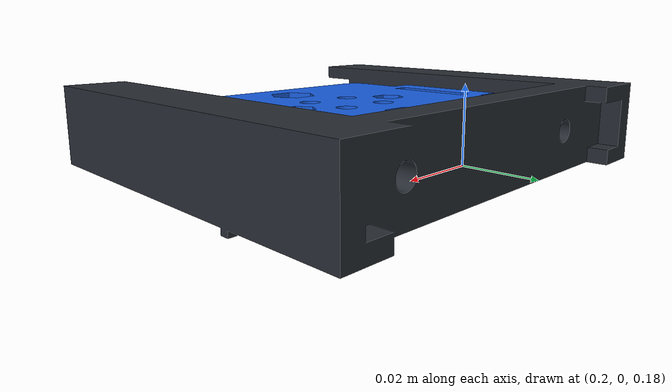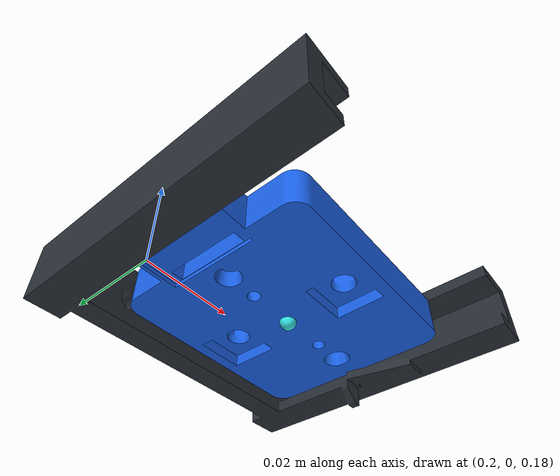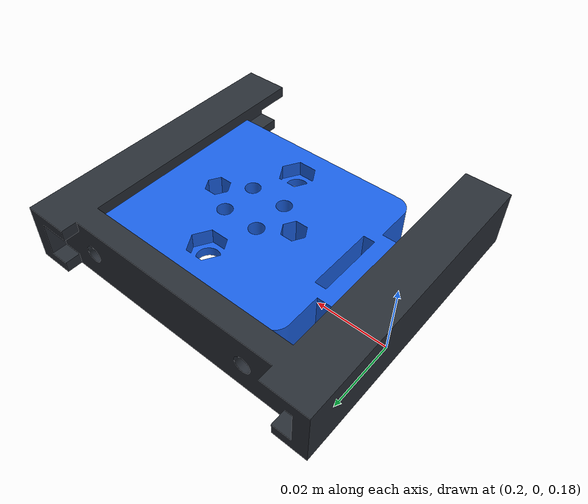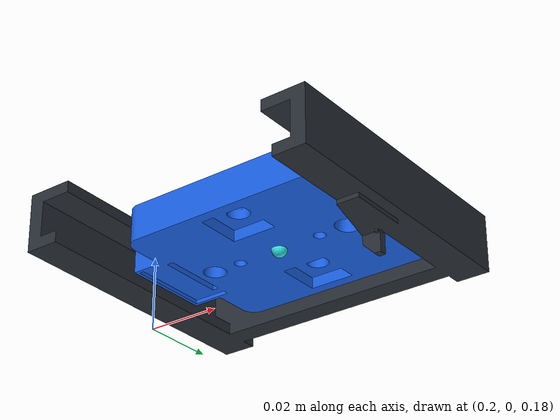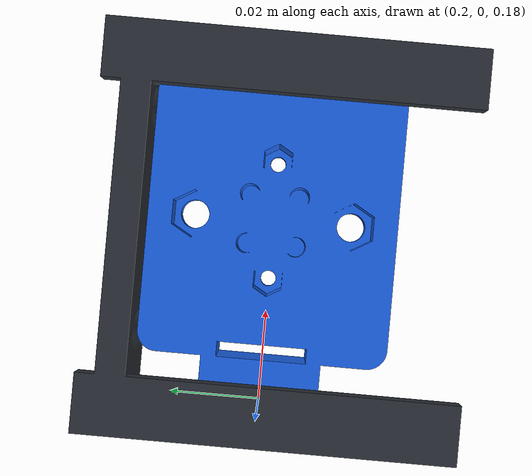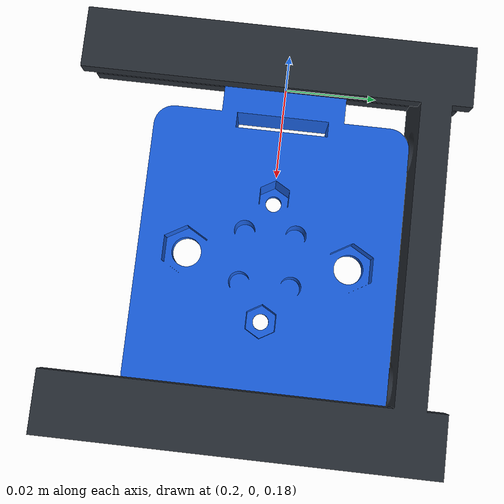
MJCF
<?xml version="1.0"?>
<mujoco model="SO-101 detachable stock gripper demo">
  <compiler angle="radian" meshdir="../exports" autolimits="true"/>
  <option timestep="0.002" integrator="implicitfast" cone="elliptic"
          gravity="0 0 -9.81"/>
  <statistic center="0.20 0 0.18" extent="0.48"/>

  <visual>
    <headlight diffuse="0.70 0.70 0.70" ambient="0.32 0.32 0.32" specular="0.12 0.12 0.12"/>
    <rgba haze="0.13 0.16 0.20 1"/>
    <global azimuth="145" elevation="-20"/>
  </visual>

  <asset>
    <mesh name="qc_robot_plate_mesh" file="so101_robot_plate.stl" scale="0.001 0.001 0.001"/>
    <mesh name="qc_stock_gripper_tool_plate_mesh" file="so101_stock_gripper_tool_plate.stl"
          scale="0.001 0.001 0.001"/>
    <mesh name="qc_tool_dock_mesh" file="so101_passive_tool_dock.stl" scale="0.001 0.001 0.001"/>

    <texture type="skybox" builtin="gradient" rgb1="0.27 0.36 0.48" rgb2="0.025 0.03 0.045"
             width="512" height="3072"/>
    <texture type="2d" name="qc_floor_grid" builtin="checker" mark="edge"
             rgb1="0.15 0.17 0.19" rgb2="0.08 0.09 0.11" markrgb="0.28 0.30 0.33"
             width="300" height="300"/>
    <material name="qc_floor_grid" texture="qc_floor_grid" texuniform="true" texrepeat="6 6"
              reflectance="0.10"/>
    <material name="qc_robot_yellow" rgba="0.96 0.69 0.08 1"/>
    <material name="qc_tool_blue" rgba="0.10 0.38 0.90 1"/>
    <material name="qc_dock_dark" rgba="0.16 0.18 0.21 1"/>
    <material name="qc_magnet" rgba="0.62 0.18 0.82 1" metallic="0.35" roughness="0.25"/>
    <material name="qc_steel" rgba="0.72 0.75 0.78 1" metallic="0.70" roughness="0.25"/>
    <material name="qc_lock" rgba="0.10 0.75 0.34 1"/>
    <material name="qc_contact" rgba="1.0 0.66 0.08 1" metallic="0.65" roughness="0.20"/>
  </asset>

  <worldbody>
    <light pos="0.0 -0.3 1.0" dir="0.2 0.2 -1" directional="true"/>
    <light pos="0.55 0.35 0.55" dir="-0.6 -0.3 -0.6" directional="true"
           diffuse="0.34 0.34 0.34"/>
    <camera name="quick_change_overview" pos="0.63 -0.61 0.43"
            xyaxes="0.70 0.72 0 -0.35 0.34 0.87"/>
    <geom name="qc_floor" type="plane" pos="0 0 -0.002" size="0.8 0.8 0.04"
          material="qc_floor_grid"/>

    <!-- The controller places this mocap rack at the reachable capture pose. -->
    <body name="tool_dock" mocap="true" pos="0.24 0 0.19">
      <geom type="mesh" mesh="qc_tool_dock_mesh" material="qc_dock_dark"
            contype="0" conaffinity="0"/>
      <!-- Compact functional colliders; the exact CAD sweep remains the
           clearance authority for the detailed printed rack. -->
      <geom name="qc_col_dock_stop" type="box" pos="0 0.029 0.004"
            size="0.031 0.004 0.004" rgba="0.16 0.18 0.21 0.24"
            contype="1" conaffinity="1" group="3"/>
      <geom name="qc_col_dock_rail_left" type="box" pos="-0.031 0 0.010"
            size="0.003 0.030 0.010" rgba="0.16 0.18 0.21 0.24"
            contype="1" conaffinity="1" group="3"/>
      <geom name="qc_col_dock_rail_right" type="box" pos="0.031 0 0.010"
            size="0.003 0.030 0.010" rgba="0.16 0.18 0.21 0.24"
            contype="1" conaffinity="1" group="3"/>
      <site name="dock_frame" pos="0 0 0" size="0.002" rgba="0.2 0.9 0.9 1"/>
    </body>

    <body name="tool_plate" pos="0.24 0 0.19">
      <freejoint name="tool_plate_free"/>
      <inertial pos="0 0 0.00475" mass="0.055" diaginertia="0.00004 0.00004 0.00006"/>
      <geom type="mesh" mesh="qc_stock_gripper_tool_plate_mesh" material="qc_tool_blue"
            contype="0" conaffinity="0"/>
      <geom name="qc_col_tool_target_left" type="box" pos="0 -0.016 0.0015"
            size="0.006 0.006 0.0015" material="qc_steel"
            contype="1" conaffinity="1" group="3"/>
      <geom name="qc_col_tool_target_right" type="box" pos="0 0.016 0.0015"
            size="0.006 0.006 0.0015" material="qc_steel"
            contype="1" conaffinity="1" group="3"/>
      <geom name="qc_col_tool_stud_left" type="cylinder" pos="0 -0.010 0.001"
            size="0.003 0.001" material="qc_steel"
            contype="1" conaffinity="1" group="3"/>
      <geom name="qc_col_tool_stud_right" type="cylinder" pos="0 0.010 0.001"
            size="0.003 0.001" material="qc_steel"
            contype="1" conaffinity="1" group="3"/>
      <site name="tool_mating_face" pos="0 0 0" size="0.002" rgba="0.15 0.65 1 1"/>
      <body name="stock_gripper_placeholder"/>
    </body>
  </worldbody>

  <equality>
    <weld name="tool_in_dock" body1="tool_dock" body2="tool_plate" active="true"
          solref="0.003 1" solimp="0.98 0.995 0.001"/>
    <weld name="magnetic_capture" body1="robot_plate_frame" body2="tool_plate" active="false"
          relpose="0 0 0.0095 1 0 0 0"
          solref="0.004 1" solimp="0.95 0.99 0.001"/>
    <weld name="positive_lock" body1="robot_plate_frame" body2="tool_plate" active="false"
          relpose="0 0 0.0095 1 0 0 0"
          solref="0.003 1" solimp="0.98 0.995 0.001"/>
  </equality>

  <!-- This is metadata for the existing LeRobot/Feetech tool-address concept. -->
  <custom>
    <numeric name="tool_servo_id" data="6"/>
  </custom>
</mujoco>
